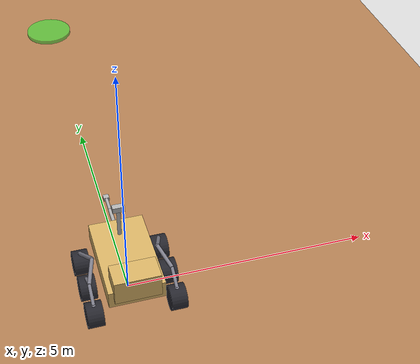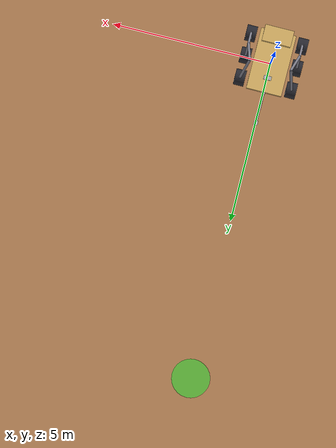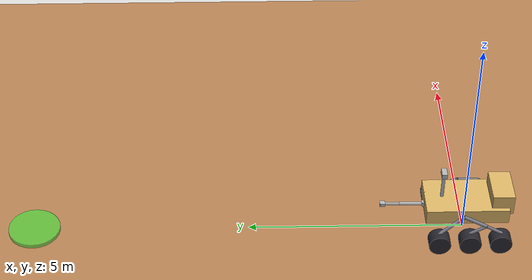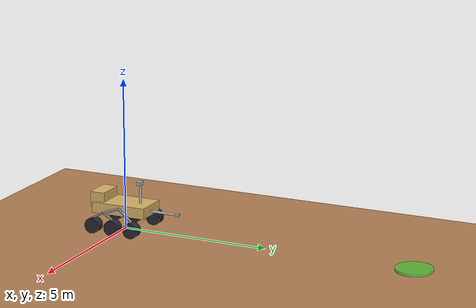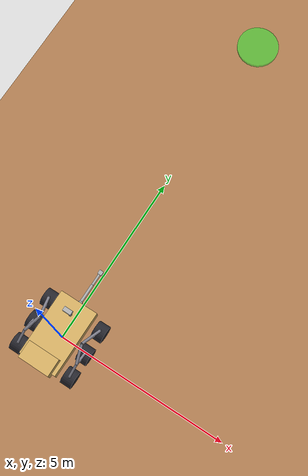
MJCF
<mujoco model="terrain_flat">
  <!-- Minimal flat sand terrain. Includes the rover. -->
  <include file="rover.xml"/>

  <visual>
    <headlight diffuse="0.6 0.6 0.6" ambient="0.3 0.3 0.3" specular="0 0 0"/>
    <rgba haze="0.85 0.7 0.55 1"/>
    <global azimuth="120" elevation="-20"/>
  </visual>

  <asset>
    <texture type="skybox" builtin="gradient" rgb1="0.8 0.6 0.5" rgb2="0.4 0.3 0.3" width="512" height="512"/>
    <texture type="2d" name="sand" builtin="checker" rgb1="0.75 0.55 0.35" rgb2="0.65 0.45 0.3" width="200" height="200"/>
    <material name="sand_mat" texture="sand" texrepeat="20 20" specular="0.05" shininess="0.05"/>
  </asset>

  <worldbody>
    <geom name="ground" type="plane" size="40 40 0.1" material="sand_mat"
          friction="1.0 0.05 0.001" contype="1" conaffinity="1"/>
    <light name="sun" pos="0 0 15" dir="0 0 -1" diffuse="0.6 0.6 0.6" castshadow="false"/>
    <geom name="goal_marker" type="cylinder" pos="0 10 0.05" size="0.6 0.05"
          rgba="0.2 0.9 0.2 0.6" contype="0" conaffinity="0"/>
  </worldbody>
</mujoco>

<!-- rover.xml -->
<mujoco model="rover">

  <compiler angle="radian" autolimits="true"/>
  <option timestep="0.005" gravity="0 0 -3.71" integrator="implicitfast"
          solver="Newton" iterations="150" tolerance="1e-10"
          cone="elliptic" impratio="3"/>

  <default>
    <joint armature="0.01" damping="1"/>
    <geom contype="1" conaffinity="1" condim="3" friction="1.0 0.05 0.001"/>
    <default class="chassis">
      <geom rgba="0.85 0.7 0.4 1"/>
    </default>
    <default class="rocker">
      <geom rgba="0.5 0.5 0.55 1"/>
    </default>
    <default class="wheel">
      <geom type="cylinder" rgba="0.15 0.15 0.18 1" friction="1.8 0.1 0.01"/>
    </default>
    <default class="arm">
      <!-- density 300 keeps arm bodies light (~0.4–0.8 kg each) without explicit inertials -->
      <geom rgba="0.7 0.7 0.7 1" density="300"/>
    </default>
    <default class="drive">
      <general dyntype="none" gaintype="fixed" biastype="affine"
               gainprm="30 0 0" biasprm="0 0 -30"
               ctrlrange="-3.0 3.0" forcerange="-60 60"/>
    </default>
    <default class="steer">
      <!-- Position-controlled steering: ctrl = desired joint angle (rad).
           ±1 rad ≈ ±57°, enough for general nav; real Curiosity goes to ±90° for K-turns. -->
      <position kp="600" kv="30" ctrlrange="-1.0 1.0" forcerange="-250 250"/>
    </default>
    <default class="armjoint">
      <!-- Position-controlled arm joint: ctrl = desired angle (rad). -->
      <position kp="80" kv="8" forcerange="-50 50"/>
    </default>
  </default>

  <worldbody>
    <body name="base_link" pos="0 0 0.75">
      <freejoint name="root"/>
      <site name="imu" pos="0 0 0"/>
      <inertial pos="0 0 -0.18" mass="70" diaginertia="22 8 28"/>
      <camera name="chase" pos="0 -4.5 2.0" mode="targetbody" target="base_link" fovy="55"/>
      <geom name="chassis" class="chassis" type="box" size="0.55 0.95 0.18"/>
      <geom name="back_box" class="chassis" type="box" size="0.45 0.25 0.25" pos="0 -0.8 0.25"/>
      <geom name="mast" class="arm" type="cylinder" size="0.04 0.4" pos="0.0 0.55 0.45"/>
      <geom name="mast_head" class="arm" type="box" size="0.12 0.06 0.06" pos="0.0 0.55 0.85"/>

      <camera name="navcam" pos="0 0.62 0.95" xyaxes="1 0 0  0 0 1" fovy="70"/>

      <site name="lidar_ray_m60" pos="0 0.95 0.30" xyaxes="-0.5 -0.866 0  0 0 1"/>
      <site name="lidar_ray_m30" pos="0 0.95 0.30" xyaxes="-0.866 -0.5 0  0 0 1"/>
      <site name="lidar_ray_0"   pos="0 0.95 0.30" xyaxes="-1 0 0  0 0 1"/>
      <site name="lidar_ray_p30" pos="0 0.95 0.30" xyaxes="-0.866 0.5 0  0 0 1"/>
      <site name="lidar_ray_p60" pos="0 0.95 0.30" xyaxes="-0.5 0.866 0  0 0 1"/>

      <body name="arm_base" pos="0 0.95 -0.05">
        <joint name="arm_yaw" axis="0 0 1" range="-1.57 1.57" damping="15"/>
        <geom class="arm" type="cylinder" size="0.06 0.05"/>
        <body name="arm_1" pos="0 0.06 0">
          <joint name="arm_shoulder" axis="1 0 0" range="-1.5 1.5" damping="15"/>
          <geom class="arm" type="capsule" fromto="0 0 0 0 0.50 0" size="0.04"/>
          <body name="arm_2" pos="0 0.50 0">
            <joint name="arm_elbow" axis="1 0 0" range="-2.5 2.5" damping="12"/>
            <geom class="arm" type="capsule" fromto="0 0 0 0 0.40 0" size="0.035"/>
            <body name="arm_tool" pos="0 0.40 0">
              <joint name="arm_wrist" axis="0 1 0" range="-2.5 2.5" damping="8"/>
              <geom class="arm" type="box" size="0.06 0.06 0.04"/>
              <site name="tool_tip" pos="0 0.06 0"/>
            </body>
          </body>
        </body>
      </body>

      <body name="rocker_right" pos="0.65 0.10 0.10">
        <joint name="rocker_right_joint" axis="1 0 0" range="-0.44 0.44"
               damping="2" stiffness="0"/>
        <!-- Front arm: extends outboard (+x, +0.16) and forward (+y, +0.55) with
             a slight downward bend (-0.05) so the arm tip sits just above wheel top. -->
        <geom class="rocker" type="cylinder" fromto="0 0 0  0.16 0.55 -0.35" size="0.04"
              contype="0" conaffinity="0"/>
        <!-- Rear arm to bogie pivot: outboard + back, also slight down bend. -->
        <geom class="rocker" type="cylinder" fromto="0 0 0  0.16 -0.50 -0.15" size="0.04"
              contype="0" conaffinity="0"/>

        <body name="steer_right_front" pos="0.16 0.55 -0.35">
          <joint name="steer_right_front_joint" axis="0 0 1" range="-1.0 1.0"
                 damping="20" stiffness="0"/>
          <!-- Vertical steering strut from knuckle (above wheel top) down to axle. -->
          <geom class="rocker" type="cylinder" fromto="0 0 0 0 0 -0.25" size="0.04"
                contype="0" conaffinity="0"/>
          <body name="wheel_right_front" pos="0 0 -0.25">
            <joint name="wheel_right_front_joint" axis="1 0 0"/>
            <geom class="wheel" size="0.25 0.16" euler="0 1.5707963 0"/>
            <inertial pos="0 0 0" mass="1.5" diaginertia="0.047 0.036 0.036"/>
          </body>
        </body>

        <body name="bogie_right" pos="0.16 -0.50 -0.15">
          <joint name="bogie_right_joint" axis="1 0 0" range="-0.35 0.35"
                 damping="8" stiffness="0"/>
          <geom class="rocker" type="cylinder" fromto="0 0 0 0 0.35 -0.20" size="0.035"
                contype="0" conaffinity="0"/>
          <geom class="rocker" type="cylinder" fromto="0 0 0 0 -0.35 -0.20" size="0.035"
                contype="0" conaffinity="0"/>
          <geom class="rocker" type="cylinder" fromto="0 0.35 -0.20 0 0.35 -0.45" size="0.035"
                contype="0" conaffinity="0"/>

          <body name="wheel_right_middle" pos="0 0.35 -0.45">
            <joint name="wheel_right_middle_joint" axis="1 0 0"/>
            <geom class="wheel" size="0.25 0.16" euler="0 1.5707963 0"/>
            <inertial pos="0 0 0" mass="1.5" diaginertia="0.047 0.036 0.036"/>
          </body>

          <body name="steer_right_rear" pos="0 -0.35 -0.20">
            <joint name="steer_right_rear_joint" axis="0 0 1" range="-1.0 1.0"
                   damping="20" stiffness="0"/>
            <geom class="rocker" type="cylinder" fromto="0 0 0 0 0 -0.25" size="0.04"
                  contype="0" conaffinity="0"/>
            <body name="wheel_right_rear" pos="0 0 -0.25">
              <joint name="wheel_right_rear_joint" axis="1 0 0"/>
              <geom class="wheel" size="0.25 0.16" euler="0 1.5707963 0"/>
              <inertial pos="0 0 0" mass="1.5" diaginertia="0.047 0.036 0.036"/>
            </body>
          </body>
        </body>
      </body>

      <!-- Left rocker (mirror of right; arms go -X outboard). -->
      <body name="rocker_left" pos="-0.65 0.10 0.10">
        <joint name="rocker_left_joint" axis="1 0 0" range="-0.44 0.44"
               damping="2" stiffness="0"/>
        <geom class="rocker" type="cylinder" fromto="0 0 0  -0.16 0.55 -0.35" size="0.04"
              contype="0" conaffinity="0"/>
        <geom class="rocker" type="cylinder" fromto="0 0 0  -0.16 -0.50 -0.15" size="0.04"
              contype="0" conaffinity="0"/>

        <body name="steer_left_front" pos="-0.16 0.55 -0.35">
          <joint name="steer_left_front_joint" axis="0 0 1" range="-1.0 1.0"
                 damping="20" stiffness="0"/>
          <geom class="rocker" type="cylinder" fromto="0 0 0 0 0 -0.25" size="0.04"
                contype="0" conaffinity="0"/>
          <body name="wheel_left_front" pos="0 0 -0.25">
            <joint name="wheel_left_front_joint" axis="1 0 0"/>
            <geom class="wheel" size="0.25 0.16" euler="0 1.5707963 0"/>
            <inertial pos="0 0 0" mass="1.5" diaginertia="0.047 0.036 0.036"/>
          </body>
        </body>

        <body name="bogie_left" pos="-0.16 -0.50 -0.15">
          <joint name="bogie_left_joint" axis="1 0 0" range="-0.35 0.35"
                 damping="8" stiffness="0"/>
          <geom class="rocker" type="cylinder" fromto="0 0 0 0 0.35 -0.20" size="0.035"
                contype="0" conaffinity="0"/>
          <geom class="rocker" type="cylinder" fromto="0 0 0 0 -0.35 -0.20" size="0.035"
                contype="0" conaffinity="0"/>
          <geom class="rocker" type="cylinder" fromto="0 0.35 -0.20 0 0.35 -0.45" size="0.035"
                contype="0" conaffinity="0"/>

          <body name="wheel_left_middle" pos="0 0.35 -0.45">
            <joint name="wheel_left_middle_joint" axis="1 0 0"/>
            <geom class="wheel" size="0.25 0.16" euler="0 1.5707963 0"/>
            <inertial pos="0 0 0" mass="1.5" diaginertia="0.047 0.036 0.036"/>
          </body>

          <body name="steer_left_rear" pos="0 -0.35 -0.20">
            <joint name="steer_left_rear_joint" axis="0 0 1" range="-1.0 1.0"
                   damping="20" stiffness="0"/>
            <geom class="rocker" type="cylinder" fromto="0 0 0 0 0 -0.25" size="0.04"
                  contype="0" conaffinity="0"/>
            <body name="wheel_left_rear" pos="0 0 -0.25">
              <joint name="wheel_left_rear_joint" axis="1 0 0"/>
              <geom class="wheel" size="0.25 0.16" euler="0 1.5707963 0"/>
              <inertial pos="0 0 0" mass="1.5" diaginertia="0.047 0.036 0.036"/>
            </body>
          </body>
        </body>
      </body>
    </body>
  </worldbody>

  <equality>
    <joint name="rocker_diff" joint1="rocker_right_joint" joint2="rocker_left_joint"
           polycoef="0 -1 0 0 0" solref="0.005 1" solimp="0.99 0.999 0.001"/>
  </equality>

  <actuator>
    <!-- Drive (velocity-controlled): 6 wheels. ctrl indices 0..5. -->
    <general  class="drive" name="drive_right_front"  joint="wheel_right_front_joint"/>
    <general  class="drive" name="drive_right_middle" joint="wheel_right_middle_joint"/>
    <general  class="drive" name="drive_right_rear"   joint="wheel_right_rear_joint"/>
    <general  class="drive" name="drive_left_front"   joint="wheel_left_front_joint"/>
    <general  class="drive" name="drive_left_middle"  joint="wheel_left_middle_joint"/>
    <general  class="drive" name="drive_left_rear"    joint="wheel_left_rear_joint"/>
    <!-- Steering (position-controlled): 4 corner wheels, middle wheels are fixed.
         ctrl indices 6..9 (default 0 = wheel pointing forward). -->
    <position class="steer" name="steer_right_front"  joint="steer_right_front_joint"/>
    <position class="steer" name="steer_right_rear"   joint="steer_right_rear_joint"/>
    <position class="steer" name="steer_left_front"   joint="steer_left_front_joint"/>
    <position class="steer" name="steer_left_rear"    joint="steer_left_rear_joint"/>
    <!-- Arm (position-controlled): yaw / shoulder / elbow / wrist.
         ctrl indices 10..13 (default 0 = stowed straight-up pose). -->
    <position class="armjoint" name="arm_yaw"      joint="arm_yaw"      ctrlrange="-1.57 1.57"/>
    <position class="armjoint" name="arm_shoulder" joint="arm_shoulder" ctrlrange="-1.57 1.57"/>
    <position class="armjoint" name="arm_elbow"    joint="arm_elbow"    ctrlrange="-2.5 2.5"/>
    <position class="armjoint" name="arm_wrist"    joint="arm_wrist"    ctrlrange="-1.57 1.57"/>
  </actuator>

  <sensor>
    <!-- IMU + body pose -->
    <gyro          name="imu_gyro"   site="imu"/>
    <accelerometer name="imu_accel"  site="imu"/>
    <framepos      name="base_pos"   objtype="site" objname="imu"/>
    <framequat     name="base_quat"  objtype="site" objname="imu"/>
    <framelinvel   name="base_linvel" objtype="site" objname="imu"/>
    <frameangvel   name="base_angvel" objtype="site" objname="imu"/>
    <!-- 5-ray forward lidar fan (return ray distance, or -1 if no hit). -->
    <rangefinder name="lidar_m60" site="lidar_ray_m60"/>
    <rangefinder name="lidar_m30" site="lidar_ray_m30"/>
    <rangefinder name="lidar_0"   site="lidar_ray_0"/>
    <rangefinder name="lidar_p30" site="lidar_ray_p30"/>
    <rangefinder name="lidar_p60" site="lidar_ray_p60"/>
    <!-- Arm tool tip pose for end-effector tracking. -->
    <framepos    name="tool_pos"  objtype="site" objname="tool_tip"/>
  </sensor>
</mujoco>
